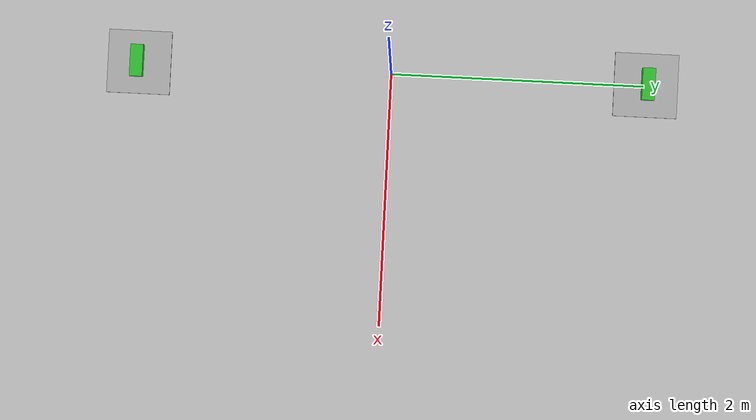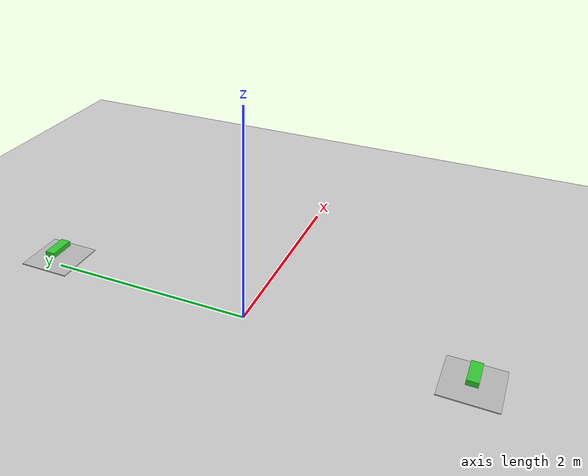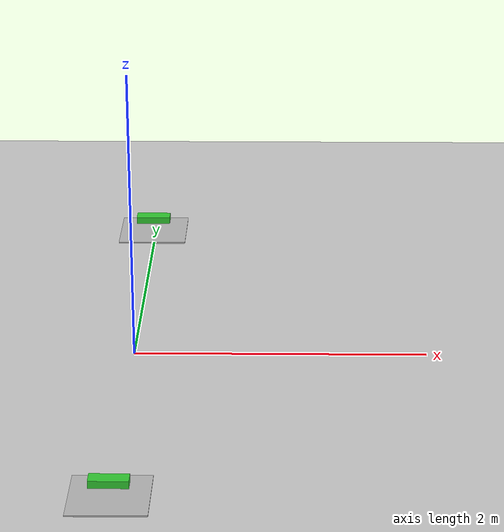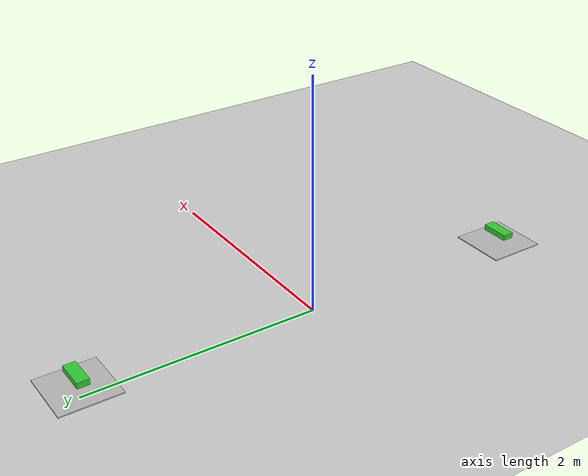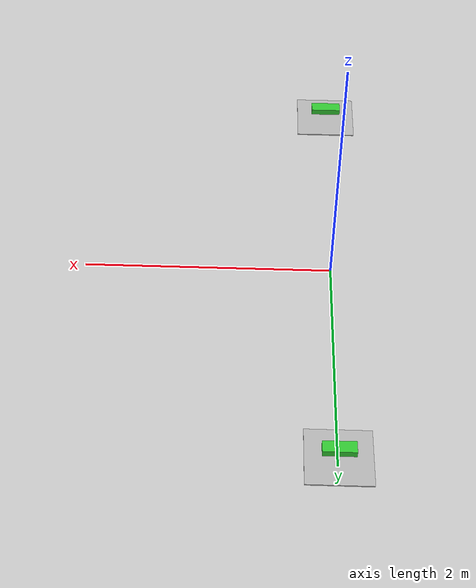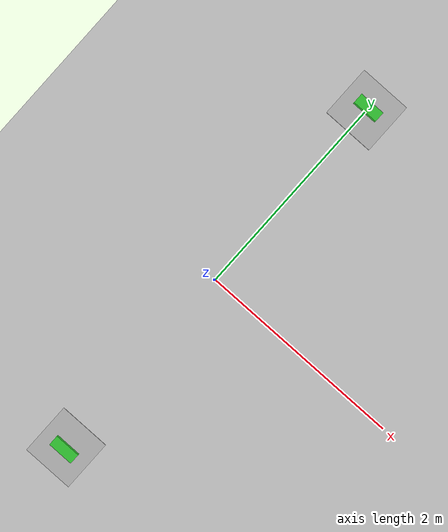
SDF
<?xml version="1.0" ?>
<sdf version="1.7">

    <world name="demo">
        <!-- Physics -->
        <plugin
            filename="libignition-gazebo-physics-system.so"
            name="ignition::gazebo::systems::Physics"></plugin>
        <!-- Forwards simulation state to the GUI -->
        <plugin
            filename="libignition-gazebo-scene-broadcaster-system.so"
            name="ignition::gazebo::systems::SceneBroadcaster"></plugin>
        <!-- Processes user commands, like translate and create -->
        <plugin
            filename="libignition-gazebo-user-commands-system.so"
            name="ignition::gazebo::systems::UserCommands"></plugin>
        <!-- Generates rendering sensor data -->
        <plugin
            filename="libignition-gazebo-sensors-system.so"
            name="ignition::gazebo::systems::Sensors">
            <!-- ogre2 not working with just the MESA_GL_VERSION_OVERRIDE=3.3 trick -->
            <render_engine>ogre2</render_engine>
        </plugin>
        <plugin filename="libignition-gazebo-imu-system.so"
        		name="ignition::gazebo::systems::Imu"></plugin>
        <!--light-->
        <light type="directional" name="sun">
            <cast_shadows>true</cast_shadows>
            <pose>0 0 10 0 0 0</pose>
            <diffuse>0.8 0.8 0.8 1</diffuse>
            <specular>0.2 0.2 0.2 1</specular>
            <attenuation>
                <range>1000</range>
                <constant>0.3</constant>
                <linear>0.01</linear>
                <quadratic>0.001</quadratic>
            </attenuation>
            <direction>-0.5 0.1 -0.9</direction>
        </light>
        <!--ground_plane-->
        <model name="ground_plane">
            <static>true</static>
            <link name="link">
                <collision name="collision">
                    <geometry>
                        <plane>
                            <normal>0 0 1</normal>
                        </plane>
                    </geometry>
                </collision>
                <visual name="visual">
                    <geometry>
                        <plane>
                            <normal>0 0 1</normal>
                            <size>100 100</size>
                        </plane>
                    </geometry>
                    <material>
                        <ambient>0.8 0.8 0.8 1</ambient>
                        <diffuse>0.8 0.8 0.8 1</diffuse>
                        <specular>0.8 0.8 0.8 1</specular>
                    </material>
                </visual>
            </link>
        </model>
        <!--ur10 robot-->
    <model name="joint_controller_demo">
      <pose>0 -2 0 0 0 0</pose>
      <link name="base_link">
        <pose>0.0 0.0 0.0 0 0 0</pose>
        <inertial>
          <inertia>
            <ixx>2.501</ixx>
            <ixy>0</ixy>
            <ixz>0</ixz>
            <iyy>2.501</iyy>
            <iyz>0</iyz>
            <izz>5</izz>
          </inertia>
          <mass>120.0</mass>
        </inertial>
        <visual name="base_visual">
          <pose>0.0 0.0 0.0 0 0 0</pose>
          <geometry>
            <box>
              <size>0.5 0.5 0.01</size>
            </box>
          </geometry>
        </visual>
        <collision name="base_collision">
          <pose>0.0 0.0 0.0 0 0 0</pose>
          <geometry>
            <box>
              <size>0.5 0.5 0.01</size>
            </box>
          </geometry>
        </collision>
      </link>
      <link name="rotor">
        <pose>0.0 0.0 0.1 0 0 0</pose>
        <inertial>
          <inertia>
            <ixx>0.032</ixx>
            <ixy>0</ixy>
            <ixz>0</ixz>
            <iyy>0.032</iyy>
            <iyz>0</iyz>
            <izz>0.00012</izz>
          </inertia>
          <mass>0.6</mass>
        </inertial>
        <visual name="visual">
          <geometry>
            <box>
              <size>0.25 0.1 0.05</size>
            </box>
          </geometry>
          <material>
            <ambient>0.2 0.8 0.2 1</ambient>
          </material>
        </visual>
        <collision name="collision">
          <geometry>
            <box>
              <size>0.25 0.1 0.05</size>
            </box>
          </geometry>
        </collision>
      </link>

      <joint name="j1" type="revolute">
        <pose>0 0 -0.5 0 0 0</pose>
        <parent>base_link</parent>
        <child>rotor</child>
        <axis>
          <xyz>0 0 1</xyz>
        </axis>
      </joint>
      <!-- Velocity mode -->
      <plugin
        filename="ignition-gazebo-joint-controller-system"
        name="ignition::gazebo::systems::JointController">
        <joint_name>j1</joint_name>
      </plugin>
    </model>
    <model name="joint_controller_demo_2">
      <pose>0 2 0.1 0 0 0</pose>
      <link name="base_link">
        <pose>0.0 0.0 0.0 0 0 0</pose>
        <inertial>
          <inertia>
            <ixx>2.501</ixx>
            <ixy>0</ixy>
            <ixz>0</ixz>
            <iyy>2.501</iyy>
            <iyz>0</iyz>
            <izz>5</izz>
          </inertia>
          <mass>120.0</mass>
        </inertial>
        <visual name="base_visual">
          <pose>0.0 0.0 0.0 0 0 0</pose>
          <geometry>
            <box>
              <size>0.5 0.5 0.01</size>
            </box>
          </geometry>
        </visual>
        <collision name="base_collision">
          <pose>0.0 0.0 0.0 0 0 0</pose>
          <geometry>
            <box>
              <size>0.5 0.5 0.01</size>
            </box>
          </geometry>
        </collision>
      </link>
      <link name="rotor2">
        <pose>0.0 0.0 0.1 0 0 0</pose>
        <inertial>
          <inertia>
            <ixx>0.032</ixx>
            <ixy>0</ixy>
            <ixz>0</ixz>
            <iyy>0.032</iyy>
            <iyz>0</iyz>
            <izz>0.00012</izz>
          </inertia>
          <mass>0.6</mass>
        </inertial>
        <visual name="visual">
          <geometry>
            <box>
              <size>0.25 0.1 0.05</size>
            </box>
          </geometry>
          <material>
            <ambient>0.2 0.8 0.2 1</ambient>
          </material>
        </visual>
        <collision name="collision">
          <geometry>
            <box>
              <size>0.25 0.1 0.05</size>
            </box>
          </geometry>
        </collision>
      </link>

      <joint name="j1" type="revolute">
        <pose>0 0 -0.5 0 0 0</pose>
        <parent>base_link</parent>
        <child>rotor2</child>
        <axis>
          <xyz>0 0 1</xyz>
        </axis>
      </joint>

      <!-- Force mode -->
      <plugin
        filename="ignition-gazebo-joint-controller-system"
        name="ignition::gazebo::systems::JointController">
        <joint_name>j1</joint_name>
        <use_force_commands>true</use_force_commands>
        <p_gain>0.2</p_gain>
        <i_gain>0.01</i_gain>
      </plugin>
      </model>
    </world>
</sdf>
